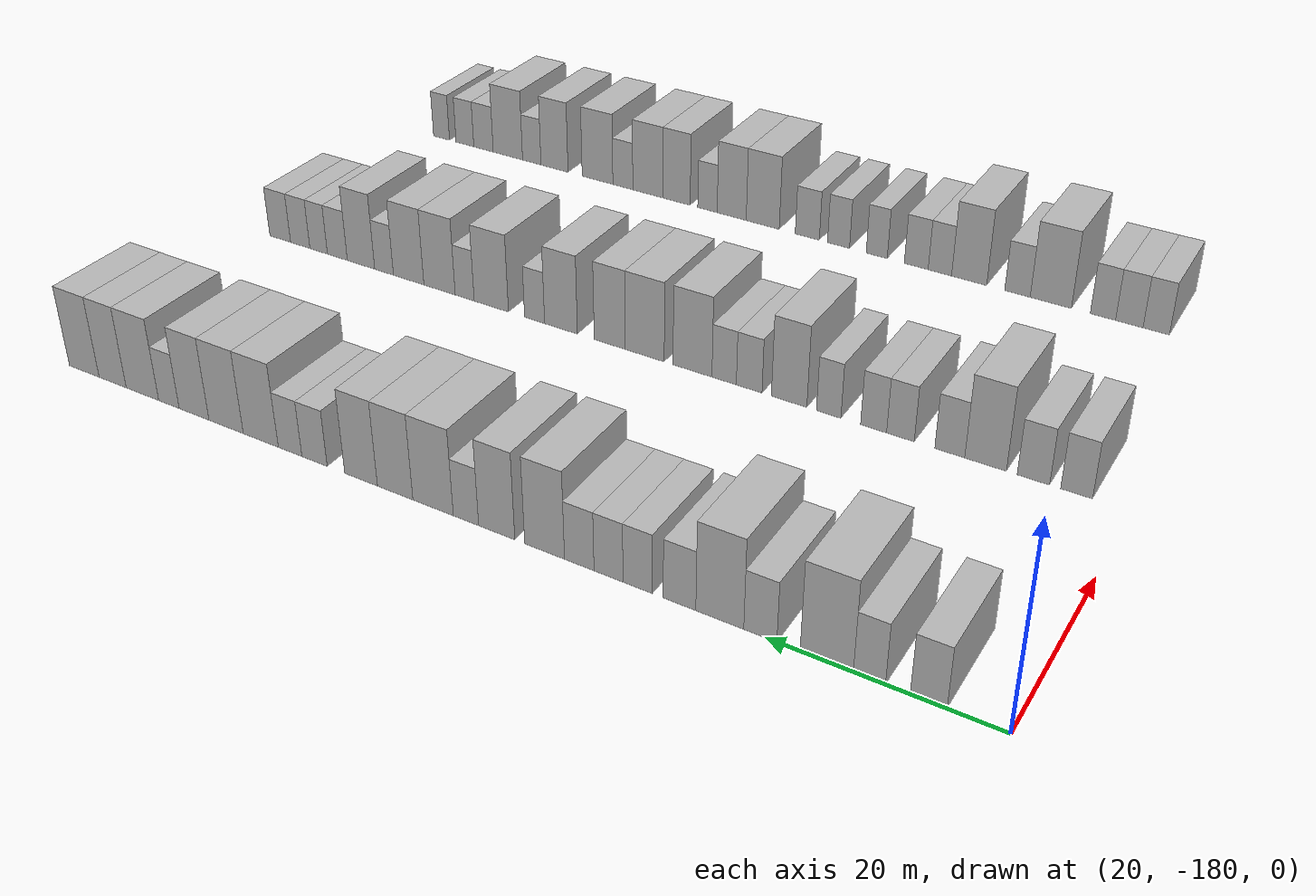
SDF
<sdf version="1.6">
 <world name="default">
  <model name="building_23">
   <static>1</static>
   <pose>25.0000 -173.5735 0 0.000000 0.000000 0.000000</pose>
   <link name="link">
    <pose>0 0 3.00 0 0 0</pose>
    <collision name="collision"><geometry><box><size>10.0000 2.9335 6.0000</size></box></geometry></collision>
    <visual name="visual">
     <cast_shadows>0</cast_shadows>
     <geometry><box><size>10.0000 2.9335 6.0000</size></box></geometry>
     <material>
      <script>
       <uri>model://HANNAS_wall/materials/scripts</uri>
       <uri>model://HANNAS_wall/materials/textures</uri>
       <name>vrc/HANNAS_wall</name>
      </script>
     </material>
    </visual>
   </link>
  </model>
  <model name="building_24">
   <static>1</static>
   <pose>25.0000 -168.7866 0 0.000000 0.000000 0.000000</pose>
   <link name="link">
    <pose>0 0 3.00 0 0 0</pose>
    <collision name="collision"><geometry><box><size>10.0000 2.6401 6.0000</size></box></geometry></collision>
    <visual name="visual">
     <cast_shadows>0</cast_shadows>
     <geometry><box><size>10.0000 2.6401 6.0000</size></box></geometry>
     <material>
      <script>
       <uri>model://HANNAS_wall/materials/scripts</uri>
       <uri>model://HANNAS_wall/materials/textures</uri>
       <name>vrc/HANNAS_wall</name>
      </script>
     </material>
    </visual>
   </link>
  </model>
  <model name="building_25">
   <static>1</static>
   <pose>25.0000 -165.2260 0 0.000000 0.000000 0.000000</pose>
   <link name="link">
    <pose>0 0 4.50 0 0 0</pose>
    <collision name="collision"><geometry><box><size>10.0000 4.4811 9.0000</size></box></geometry></collision>
    <visual name="visual">
     <cast_shadows>0</cast_shadows>
     <geometry><box><size>10.0000 4.4811 9.0000</size></box></geometry>
     <material>
      <script>
       <uri>model://HANNAS_wall/materials/scripts</uri>
       <uri>model://HANNAS_wall/materials/textures</uri>
       <name>vrc/HANNAS_wall</name>
      </script>
     </material>
    </visual>
   </link>
  </model>
  <model name="building_26">
   <static>1</static>
   <pose>25.0000 -159.5359 0 0.000000 0.000000 0.000000</pose>
   <link name="link">
    <pose>0 0 3.00 0 0 0</pose>
    <collision name="collision"><geometry><box><size>10.0000 2.8993 6.0000</size></box></geometry></collision>
    <visual name="visual">
     <cast_shadows>0</cast_shadows>
     <geometry><box><size>10.0000 2.8993 6.0000</size></box></geometry>
     <material>
      <script>
       <uri>model://HANNAS_wall/materials/scripts</uri>
       <uri>model://HANNAS_wall/materials/textures</uri>
       <name>vrc/HANNAS_wall</name>
      </script>
     </material>
    </visual>
   </link>
  </model>
  <model name="building_27">
   <static>1</static>
   <pose>25.0000 -155.9383 0 0.000000 0.000000 0.000000</pose>
   <link name="link">
    <pose>0 0 4.50 0 0 0</pose>
    <collision name="collision"><geometry><box><size>10.0000 4.2959 9.0000</size></box></geometry></collision>
    <visual name="visual">
     <cast_shadows>0</cast_shadows>
     <geometry><box><size>10.0000 4.2959 9.0000</size></box></geometry>
     <material>
      <script>
       <uri>model://HANNAS_wall/materials/scripts</uri>
       <uri>model://HANNAS_wall/materials/textures</uri>
       <name>vrc/HANNAS_wall</name>
      </script>
     </material>
    </visual>
   </link>
  </model>
  <model name="building_28">
   <static>1</static>
   <pose>25.0000 -152.2957 0 0.000000 0.000000 0.000000</pose>
   <link name="link">
    <pose>0 0 3.00 0 0 0</pose>
    <collision name="collision"><geometry><box><size>10.0000 2.9892 6.0000</size></box></geometry></collision>
    <visual name="visual">
     <cast_shadows>0</cast_shadows>
     <geometry><box><size>10.0000 2.9892 6.0000</size></box></geometry>
     <material>
      <script>
       <uri>model://HANNAS_wall/materials/scripts</uri>
       <uri>model://HANNAS_wall/materials/textures</uri>
       <name>vrc/HANNAS_wall</name>
      </script>
     </material>
    </visual>
   </link>
  </model>
  <model name="building_29">
   <static>1</static>
   <pose>25.0000 -148.4157 0 0.000000 0.000000 0.000000</pose>
   <link name="link">
    <pose>0 0 3.00 0 0 0</pose>
    <collision name="collision"><geometry><box><size>10.0000 2.7708 6.0000</size></box></geometry></collision>
    <visual name="visual">
     <cast_shadows>0</cast_shadows>
     <geometry><box><size>10.0000 2.7708 6.0000</size></box></geometry>
     <material>
      <script>
       <uri>model://HANNAS_wall/materials/scripts</uri>
       <uri>model://HANNAS_wall/materials/textures</uri>
       <name>vrc/HANNAS_wall</name>
      </script>
     </material>
    </visual>
   </link>
  </model>
  <model name="building_30">
   <static>1</static>
   <pose>25.0000 -145.6385 0 0.000000 0.000000 0.000000</pose>
   <link name="link">
    <pose>0 0 3.00 0 0 0</pose>
    <collision name="collision"><geometry><box><size>10.0000 2.7837 6.0000</size></box></geometry></collision>
    <visual name="visual">
     <cast_shadows>0</cast_shadows>
     <geometry><box><size>10.0000 2.7837 6.0000</size></box></geometry>
     <material>
      <script>
       <uri>model://HANNAS_wall/materials/scripts</uri>
       <uri>model://HANNAS_wall/materials/textures</uri>
       <name>vrc/HANNAS_wall</name>
      </script>
     </material>
    </visual>
   </link>
  </model>
  <model name="building_31">
   <static>1</static>
   <pose>25.0000 -142.8072 0 0.000000 0.000000 0.000000</pose>
   <link name="link">
    <pose>0 0 3.00 0 0 0</pose>
    <collision name="collision"><geometry><box><size>10.0000 2.8789 6.0000</size></box></geometry></collision>
    <visual name="visual">
     <cast_shadows>0</cast_shadows>
     <geometry><box><size>10.0000 2.8789 6.0000</size></box></geometry>
     <material>
      <script>
       <uri>model://HANNAS_wall/materials/scripts</uri>
       <uri>model://HANNAS_wall/materials/textures</uri>
       <name>vrc/HANNAS_wall</name>
      </script>
     </material>
    </visual>
   </link>
  </model>
  <model name="building_32">
   <static>1</static>
   <pose>25.0000 -139.3813 0 0.000000 0.000000 0.000000</pose>
   <link name="link">
    <pose>0 0 4.50 0 0 0</pose>
    <collision name="collision"><geometry><box><size>10.0000 3.9728 9.0000</size></box></geometry></collision>
    <visual name="visual">
     <cast_shadows>0</cast_shadows>
     <geometry><box><size>10.0000 3.9728 9.0000</size></box></geometry>
     <material>
      <script>
       <uri>model://HANNAS_wall/materials/scripts</uri>
       <uri>model://HANNAS_wall/materials/textures</uri>
       <name>vrc/HANNAS_wall</name>
      </script>
     </material>
    </visual>
   </link>
  </model>
  <model name="building_33">
   <static>1</static>
   <pose>25.0000 -134.5381 0 0.000000 0.000000 0.000000</pose>
   <link name="link">
    <pose>0 0 4.50 0 0 0</pose>
    <collision name="collision"><geometry><box><size>10.0000 3.7136 9.0000</size></box></geometry></collision>
    <visual name="visual">
     <cast_shadows>0</cast_shadows>
     <geometry><box><size>10.0000 3.7136 9.0000</size></box></geometry>
     <material>
      <script>
       <uri>model://HANNAS_wall/materials/scripts</uri>
       <uri>model://HANNAS_wall/materials/textures</uri>
       <name>vrc/HANNAS_wall</name>
      </script>
     </material>
    </visual>
   </link>
  </model>
  <model name="building_34">
   <static>1</static>
   <pose>25.0000 -131.3532 0 0.000000 0.000000 0.000000</pose>
   <link name="link">
    <pose>0 0 3.00 0 0 0</pose>
    <collision name="collision"><geometry><box><size>10.0000 2.6562 6.0000</size></box></geometry></collision>
    <visual name="visual">
     <cast_shadows>0</cast_shadows>
     <geometry><box><size>10.0000 2.6562 6.0000</size></box></geometry>
     <material>
      <script>
       <uri>model://HANNAS_wall/materials/scripts</uri>
       <uri>model://HANNAS_wall/materials/textures</uri>
       <name>vrc/HANNAS_wall</name>
      </script>
     </material>
    </visual>
   </link>
  </model>
  <model name="building_35">
   <static>1</static>
   <pose>25.0000 -127.8609 0 0.000000 0.000000 0.000000</pose>
   <link name="link">
    <pose>0 0 4.50 0 0 0</pose>
    <collision name="collision"><geometry><box><size>10.0000 4.3284 9.0000</size></box></geometry></collision>
    <visual name="visual">
     <cast_shadows>0</cast_shadows>
     <geometry><box><size>10.0000 4.3284 9.0000</size></box></geometry>
     <material>
      <script>
       <uri>model://HANNAS_wall/materials/scripts</uri>
       <uri>model://HANNAS_wall/materials/textures</uri>
       <name>vrc/HANNAS_wall</name>
      </script>
     </material>
    </visual>
   </link>
  </model>
  <model name="building_36">
   <static>1</static>
   <pose>25.0000 -123.7512 0 0.000000 0.000000 0.000000</pose>
   <link name="link">
    <pose>0 0 4.50 0 0 0</pose>
    <collision name="collision"><geometry><box><size>10.0000 3.8909 9.0000</size></box></geometry></collision>
    <visual name="visual">
     <cast_shadows>0</cast_shadows>
     <geometry><box><size>10.0000 3.8909 9.0000</size></box></geometry>
     <material>
      <script>
       <uri>model://HANNAS_wall/materials/scripts</uri>
       <uri>model://HANNAS_wall/materials/textures</uri>
       <name>vrc/HANNAS_wall</name>
      </script>
     </material>
    </visual>
   </link>
  </model>
  <model name="building_37">
   <static>1</static>
   <pose>25.0000 -119.9716 0 0.000000 0.000000 0.000000</pose>
   <link name="link">
    <pose>0 0 4.50 0 0 0</pose>
    <collision name="collision"><geometry><box><size>10.0000 3.6684 9.0000</size></box></geometry></collision>
    <visual name="visual">
     <cast_shadows>0</cast_shadows>
     <geometry><box><size>10.0000 3.6684 9.0000</size></box></geometry>
     <material>
      <script>
       <uri>model://HANNAS_wall/materials/scripts</uri>
       <uri>model://HANNAS_wall/materials/textures</uri>
       <name>vrc/HANNAS_wall</name>
      </script>
     </material>
    </visual>
   </link>
  </model>
  <model name="building_38">
   <static>1</static>
   <pose>25.0000 -114.6735 0 0.000000 0.000000 0.000000</pose>
   <link name="link">
    <pose>0 0 3.00 0 0 0</pose>
    <collision name="collision"><geometry><box><size>10.0000 2.9277 6.0000</size></box></geometry></collision>
    <visual name="visual">
     <cast_shadows>0</cast_shadows>
     <geometry><box><size>10.0000 2.9277 6.0000</size></box></geometry>
     <material>
      <script>
       <uri>model://HANNAS_wall/materials/scripts</uri>
       <uri>model://HANNAS_wall/materials/textures</uri>
       <name>vrc/HANNAS_wall</name>
      </script>
     </material>
    </visual>
   </link>
  </model>
  <model name="building_39">
   <static>1</static>
   <pose>25.0000 -111.8203 0 0.000000 0.000000 0.000000</pose>
   <link name="link">
    <pose>0 0 3.00 0 0 0</pose>
    <collision name="collision"><geometry><box><size>10.0000 2.7787 6.0000</size></box></geometry></collision>
    <visual name="visual">
     <cast_shadows>0</cast_shadows>
     <geometry><box><size>10.0000 2.7787 6.0000</size></box></geometry>
     <material>
      <script>
       <uri>model://HANNAS_wall/materials/scripts</uri>
       <uri>model://HANNAS_wall/materials/textures</uri>
       <name>vrc/HANNAS_wall</name>
      </script>
     </material>
    </visual>
   </link>
  </model>
  <model name="building_40">
   <static>1</static>
   <pose>25.0000 -108.3246 0 0.000000 0.000000 0.000000</pose>
   <link name="link">
    <pose>0 0 4.50 0 0 0</pose>
    <collision name="collision"><geometry><box><size>10.0000 4.2128 9.0000</size></box></geometry></collision>
    <visual name="visual">
     <cast_shadows>0</cast_shadows>
     <geometry><box><size>10.0000 4.2128 9.0000</size></box></geometry>
     <material>
      <script>
       <uri>model://HANNAS_wall/materials/scripts</uri>
       <uri>model://HANNAS_wall/materials/textures</uri>
       <name>vrc/HANNAS_wall</name>
      </script>
     </material>
    </visual>
   </link>
  </model>
  <model name="building_41">
   <static>1</static>
   <pose>25.0000 -104.1066 0 0.000000 0.000000 0.000000</pose>
   <link name="link">
    <pose>0 0 4.50 0 0 0</pose>
    <collision name="collision"><geometry><box><size>10.0000 4.2232 9.0000</size></box></geometry></collision>
    <visual name="visual">
     <cast_shadows>0</cast_shadows>
     <geometry><box><size>10.0000 4.2232 9.0000</size></box></geometry>
     <material>
      <script>
       <uri>model://HANNAS_wall/materials/scripts</uri>
       <uri>model://HANNAS_wall/materials/textures</uri>
       <name>vrc/HANNAS_wall</name>
      </script>
     </material>
    </visual>
   </link>
  </model>
  <model name="building_42">
   <static>1</static>
   <pose>25.0000 -100.1209 0 0.000000 0.000000 0.000000</pose>
   <link name="link">
    <pose>0 0 4.50 0 0 0</pose>
    <collision name="collision"><geometry><box><size>10.0000 3.7483 9.0000</size></box></geometry></collision>
    <visual name="visual">
     <cast_shadows>0</cast_shadows>
     <geometry><box><size>10.0000 3.7483 9.0000</size></box></geometry>
     <material>
      <script>
       <uri>model://HANNAS_wall/materials/scripts</uri>
       <uri>model://HANNAS_wall/materials/textures</uri>
       <name>vrc/HANNAS_wall</name>
      </script>
     </material>
    </visual>
   </link>
  </model>
  <model name="building_43">
   <static>1</static>
   <pose>25.0000 -96.9372 0 0.000000 0.000000 0.000000</pose>
   <link name="link">
    <pose>0 0 3.00 0 0 0</pose>
    <collision name="collision"><geometry><box><size>10.0000 2.6193 6.0000</size></box></geometry></collision>
    <visual name="visual">
     <cast_shadows>0</cast_shadows>
     <geometry><box><size>10.0000 2.6193 6.0000</size></box></geometry>
     <material>
      <script>
       <uri>model://HANNAS_wall/materials/scripts</uri>
       <uri>model://HANNAS_wall/materials/textures</uri>
       <name>vrc/HANNAS_wall</name>
      </script>
     </material>
    </visual>
   </link>
  </model>
  <model name="building_44">
   <static>1</static>
   <pose>25.0000 -93.5105 0 0.000000 0.000000 0.000000</pose>
   <link name="link">
    <pose>0 0 4.50 0 0 0</pose>
    <collision name="collision"><geometry><box><size>10.0000 4.2341 9.0000</size></box></geometry></collision>
    <visual name="visual">
     <cast_shadows>0</cast_shadows>
     <geometry><box><size>10.0000 4.2341 9.0000</size></box></geometry>
     <material>
      <script>
       <uri>model://HANNAS_wall/materials/scripts</uri>
       <uri>model://HANNAS_wall/materials/textures</uri>
       <name>vrc/HANNAS_wall</name>
      </script>
     </material>
    </visual>
   </link>
  </model>
  <model name="building_45">
   <static>1</static>
   <pose>25.0000 -89.5842 0 0.000000 0.000000 0.000000</pose>
   <link name="link">
    <pose>0 0 4.50 0 0 0</pose>
    <collision name="collision"><geometry><box><size>10.0000 3.6184 9.0000</size></box></geometry></collision>
    <visual name="visual">
     <cast_shadows>0</cast_shadows>
     <geometry><box><size>10.0000 3.6184 9.0000</size></box></geometry>
     <material>
      <script>
       <uri>model://HANNAS_wall/materials/scripts</uri>
       <uri>model://HANNAS_wall/materials/textures</uri>
       <name>vrc/HANNAS_wall</name>
      </script>
     </material>
    </visual>
   </link>
  </model>
  <model name="building_46">
   <static>1</static>
   <pose>25.0000 -85.7618 0 0.000000 0.000000 0.000000</pose>
   <link name="link">
    <pose>0 0 4.50 0 0 0</pose>
    <collision name="collision"><geometry><box><size>10.0000 4.0264 9.0000</size></box></geometry></collision>
    <visual name="visual">
     <cast_shadows>0</cast_shadows>
     <geometry><box><size>10.0000 4.0264 9.0000</size></box></geometry>
     <material>
      <script>
       <uri>model://HANNAS_wall/materials/scripts</uri>
       <uri>model://HANNAS_wall/materials/textures</uri>
       <name>vrc/HANNAS_wall</name>
      </script>
     </material>
    </visual>
   </link>
  </model>
  <model name="building_166">
   <static>1</static>
   <pose>55.0000 -175.0810 0 0.000000 0.000000 0.000000</pose>
   <link name="link">
    <pose>0 0 3.00 0 0 0</pose>
    <collision name="collision"><geometry><box><size>10.0000 2.8679 6.0000</size></box></geometry></collision>
    <visual name="visual">
     <cast_shadows>0</cast_shadows>
     <geometry><box><size>10.0000 2.8679 6.0000</size></box></geometry>
     <material>
      <script>
       <uri>model://HANNAS_wall/materials/scripts</uri>
       <uri>model://HANNAS_wall/materials/textures</uri>
       <name>vrc/HANNAS_wall</name>
      </script>
     </material>
    </visual>
   </link>
  </model>
  <model name="building_167">
   <static>1</static>
   <pose>55.0000 -171.1595 0 0.000000 0.000000 0.000000</pose>
   <link name="link">
    <pose>0 0 3.00 0 0 0</pose>
    <collision name="collision"><geometry><box><size>10.0000 2.9753 6.0000</size></box></geometry></collision>
    <visual name="visual">
     <cast_shadows>0</cast_shadows>
     <geometry><box><size>10.0000 2.9753 6.0000</size></box></geometry>
     <material>
      <script>
       <uri>model://HANNAS_wall/materials/scripts</uri>
       <uri>model://HANNAS_wall/materials/textures</uri>
       <name>vrc/HANNAS_wall</name>
      </script>
     </material>
    </visual>
   </link>
  </model>
  <model name="building_168">
   <static>1</static>
   <pose>55.0000 -166.7075 0 0.000000 0.000000 0.000000</pose>
   <link name="link">
    <pose>0 0 4.50 0 0 0</pose>
    <collision name="collision"><geometry><box><size>10.0000 3.9287 9.0000</size></box></geometry></collision>
    <visual name="visual">
     <cast_shadows>0</cast_shadows>
     <geometry><box><size>10.0000 3.9287 9.0000</size></box></geometry>
     <material>
      <script>
       <uri>model://HANNAS_wall/materials/scripts</uri>
       <uri>model://HANNAS_wall/materials/textures</uri>
       <name>vrc/HANNAS_wall</name>
      </script>
     </material>
    </visual>
   </link>
  </model>
  <model name="building_169">
   <static>1</static>
   <pose>55.0000 -163.3071 0 0.000000 0.000000 0.000000</pose>
   <link name="link">
    <pose>0 0 3.00 0 0 0</pose>
    <collision name="collision"><geometry><box><size>10.0000 2.8720 6.0000</size></box></geometry></collision>
    <visual name="visual">
     <cast_shadows>0</cast_shadows>
     <geometry><box><size>10.0000 2.8720 6.0000</size></box></geometry>
     <material>
      <script>
       <uri>model://HANNAS_wall/materials/scripts</uri>
       <uri>model://HANNAS_wall/materials/textures</uri>
       <name>vrc/HANNAS_wall</name>
      </script>
     </material>
    </visual>
   </link>
  </model>
  <model name="building_170">
   <static>1</static>
   <pose>55.0000 -158.5044 0 0.000000 0.000000 0.000000</pose>
   <link name="link">
    <pose>0 0 3.00 0 0 0</pose>
    <collision name="collision"><geometry><box><size>10.0000 2.7335 6.0000</size></box></geometry></collision>
    <visual name="visual">
     <cast_shadows>0</cast_shadows>
     <geometry><box><size>10.0000 2.7335 6.0000</size></box></geometry>
     <material>
      <script>
       <uri>model://HANNAS_wall/materials/scripts</uri>
       <uri>model://HANNAS_wall/materials/textures</uri>
       <name>vrc/HANNAS_wall</name>
      </script>
     </material>
    </visual>
   </link>
  </model>
  <model name="building_171">
   <static>1</static>
   <pose>55.0000 -155.8340 0 0.000000 0.000000 0.000000</pose>
   <link name="link">
    <pose>0 0 3.00 0 0 0</pose>
    <collision name="collision"><geometry><box><size>10.0000 2.6073 6.0000</size></box></geometry></collision>
    <visual name="visual">
     <cast_shadows>0</cast_shadows>
     <geometry><box><size>10.0000 2.6073 6.0000</size></box></geometry>
     <material>
      <script>
       <uri>model://HANNAS_wall/materials/scripts</uri>
       <uri>model://HANNAS_wall/materials/textures</uri>
       <name>vrc/HANNAS_wall</name>
      </script>
     </material>
    </visual>
   </link>
  </model>
  <model name="building_172">
   <static>1</static>
   <pose>55.0000 -151.2718 0 0.000000 0.000000 0.000000</pose>
   <link name="link">
    <pose>0 0 3.00 0 0 0</pose>
    <collision name="collision"><geometry><box><size>10.0000 2.5171 6.0000</size></box></geometry></collision>
    <visual name="visual">
     <cast_shadows>0</cast_shadows>
     <geometry><box><size>10.0000 2.5171 6.0000</size></box></geometry>
     <material>
      <script>
       <uri>model://HANNAS_wall/materials/scripts</uri>
       <uri>model://HANNAS_wall/materials/textures</uri>
       <name>vrc/HANNAS_wall</name>
      </script>
     </material>
    </visual>
   </link>
  </model>
  <model name="building_173">
   <static>1</static>
   <pose>55.0000 -147.1477 0 0.000000 0.000000 0.000000</pose>
   <link name="link">
    <pose>0 0 4.50 0 0 0</pose>
    <collision name="collision"><geometry><box><size>10.0000 3.7311 9.0000</size></box></geometry></collision>
    <visual name="visual">
     <cast_shadows>0</cast_shadows>
     <geometry><box><size>10.0000 3.7311 9.0000</size></box></geometry>
     <material>
      <script>
       <uri>model://HANNAS_wall/materials/scripts</uri>
       <uri>model://HANNAS_wall/materials/textures</uri>
       <name>vrc/HANNAS_wall</name>
      </script>
     </material>
    </visual>
   </link>
  </model>
  <model name="building_174">
   <static>1</static>
   <pose>55.0000 -142.8978 0 0.000000 0.000000 0.000000</pose>
   <link name="link">
    <pose>0 0 3.00 0 0 0</pose>
    <collision name="collision"><geometry><box><size>10.0000 2.7685 6.0000</size></box></geometry></collision>
    <visual name="visual">
     <cast_shadows>0</cast_shadows>
     <geometry><box><size>10.0000 2.7685 6.0000</size></box></geometry>
     <material>
      <script>
       <uri>model://HANNAS_wall/materials/scripts</uri>
       <uri>model://HANNAS_wall/materials/textures</uri>
       <name>vrc/HANNAS_wall</name>
      </script>
     </material>
    </visual>
   </link>
  </model>
  <model name="building_175">
   <static>1</static>
   <pose>55.0000 -140.1805 0 0.000000 0.000000 0.000000</pose>
   <link name="link">
    <pose>0 0 3.00 0 0 0</pose>
    <collision name="collision"><geometry><box><size>10.0000 2.6662 6.0000</size></box></geometry></collision>
    <visual name="visual">
     <cast_shadows>0</cast_shadows>
     <geometry><box><size>10.0000 2.6662 6.0000</size></box></geometry>
     <material>
      <script>
       <uri>model://HANNAS_wall/materials/scripts</uri>
       <uri>model://HANNAS_wall/materials/textures</uri>
       <name>vrc/HANNAS_wall</name>
      </script>
     </material>
    </visual>
   </link>
  </model>
  <model name="building_176">
   <static>1</static>
   <pose>55.0000 -136.6841 0 0.000000 0.000000 0.000000</pose>
   <link name="link">
    <pose>0 0 4.50 0 0 0</pose>
    <collision name="collision"><geometry><box><size>10.0000 4.3267 9.0000</size></box></geometry></collision>
    <visual name="visual">
     <cast_shadows>0</cast_shadows>
     <geometry><box><size>10.0000 4.3267 9.0000</size></box></geometry>
     <material>
      <script>
       <uri>model://HANNAS_wall/materials/scripts</uri>
       <uri>model://HANNAS_wall/materials/textures</uri>
       <name>vrc/HANNAS_wall</name>
      </script>
     </material>
    </visual>
   </link>
  </model>
  <model name="building_177">
   <static>1</static>
   <pose>55.0000 -131.2930 0 0.000000 0.000000 0.000000</pose>
   <link name="link">
    <pose>0 0 4.50 0 0 0</pose>
    <collision name="collision"><geometry><box><size>10.0000 4.4554 9.0000</size></box></geometry></collision>
    <visual name="visual">
     <cast_shadows>0</cast_shadows>
     <geometry><box><size>10.0000 4.4554 9.0000</size></box></geometry>
     <material>
      <script>
       <uri>model://HANNAS_wall/materials/scripts</uri>
       <uri>model://HANNAS_wall/materials/textures</uri>
       <name>vrc/HANNAS_wall</name>
      </script>
     </material>
    </visual>
   </link>
  </model>
  <model name="building_178">
   <static>1</static>
   <pose>55.0000 -127.2445 0 0.000000 0.000000 0.000000</pose>
   <link name="link">
    <pose>0 0 4.50 0 0 0</pose>
    <collision name="collision"><geometry><box><size>10.0000 3.6415 9.0000</size></box></geometry></collision>
    <visual name="visual">
     <cast_shadows>0</cast_shadows>
     <geometry><box><size>10.0000 3.6415 9.0000</size></box></geometry>
     <material>
      <script>
       <uri>model://HANNAS_wall/materials/scripts</uri>
       <uri>model://HANNAS_wall/materials/textures</uri>
       <name>vrc/HANNAS_wall</name>
      </script>
     </material>
    </visual>
   </link>
  </model>
  <model name="building_179">
   <static>1</static>
   <pose>55.0000 -121.4429 0 0.000000 0.000000 0.000000</pose>
   <link name="link">
    <pose>0 0 4.50 0 0 0</pose>
    <collision name="collision"><geometry><box><size>10.0000 3.9616 9.0000</size></box></geometry></collision>
    <visual name="visual">
     <cast_shadows>0</cast_shadows>
     <geometry><box><size>10.0000 3.9616 9.0000</size></box></geometry>
     <material>
      <script>
       <uri>model://HANNAS_wall/materials/scripts</uri>
       <uri>model://HANNAS_wall/materials/textures</uri>
       <name>vrc/HANNAS_wall</name>
      </script>
     </material>
    </visual>
   </link>
  </model>
  <model name="building_180">
   <static>1</static>
   <pose>55.0000 -118.2333 0 0.000000 0.000000 0.000000</pose>
   <link name="link">
    <pose>0 0 3.00 0 0 0</pose>
    <collision name="collision"><geometry><box><size>10.0000 2.4577 6.0000</size></box></geometry></collision>
    <visual name="visual">
     <cast_shadows>0</cast_shadows>
     <geometry><box><size>10.0000 2.4577 6.0000</size></box></geometry>
     <material>
      <script>
       <uri>model://HANNAS_wall/materials/scripts</uri>
       <uri>model://HANNAS_wall/materials/textures</uri>
       <name>vrc/HANNAS_wall</name>
      </script>
     </material>
    </visual>
   </link>
  </model>
  <model name="building_181">
   <static>1</static>
   <pose>55.0000 -112.8418 0 0.000000 0.000000 0.000000</pose>
   <link name="link">
    <pose>0 0 4.50 0 0 0</pose>
    <collision name="collision"><geometry><box><size>10.0000 4.3252 9.0000</size></box></geometry></collision>
    <visual name="visual">
     <cast_shadows>0</cast_shadows>
     <geometry><box><size>10.0000 4.3252 9.0000</size></box></geometry>
     <material>
      <script>
       <uri>model://HANNAS_wall/materials/scripts</uri>
       <uri>model://HANNAS_wall/materials/textures</uri>
       <name>vrc/HANNAS_wall</name>
      </script>
     </material>
    </visual>
   </link>
  </model>
  <model name="building_182">
   <static>1</static>
   <pose>55.0000 -109.4632 0 0.000000 0.000000 0.000000</pose>
   <link name="link">
    <pose>0 0 3.00 0 0 0</pose>
    <collision name="collision"><geometry><box><size>10.0000 2.4322 6.0000</size></box></geometry></collision>
    <visual name="visual">
     <cast_shadows>0</cast_shadows>
     <geometry><box><size>10.0000 2.4322 6.0000</size></box></geometry>
     <material>
      <script>
       <uri>model://HANNAS_wall/materials/scripts</uri>
       <uri>model://HANNAS_wall/materials/textures</uri>
       <name>vrc/HANNAS_wall</name>
      </script>
     </material>
    </visual>
   </link>
  </model>
  <model name="building_183">
   <static>1</static>
   <pose>55.0000 -106.2067 0 0.000000 0.000000 0.000000</pose>
   <link name="link">
    <pose>0 0 4.50 0 0 0</pose>
    <collision name="collision"><geometry><box><size>10.0000 4.0807 9.0000</size></box></geometry></collision>
    <visual name="visual">
     <cast_shadows>0</cast_shadows>
     <geometry><box><size>10.0000 4.0807 9.0000</size></box></geometry>
     <material>
      <script>
       <uri>model://HANNAS_wall/materials/scripts</uri>
       <uri>model://HANNAS_wall/materials/textures</uri>
       <name>vrc/HANNAS_wall</name>
      </script>
     </material>
    </visual>
   </link>
  </model>
  <model name="building_184">
   <static>1</static>
   <pose>55.0000 -102.1364 0 0.000000 0.000000 0.000000</pose>
   <link name="link">
    <pose>0 0 4.50 0 0 0</pose>
    <collision name="collision"><geometry><box><size>10.0000 4.0601 9.0000</size></box></geometry></collision>
    <visual name="visual">
     <cast_shadows>0</cast_shadows>
     <geometry><box><size>10.0000 4.0601 9.0000</size></box></geometry>
     <material>
      <script>
       <uri>model://HANNAS_wall/materials/scripts</uri>
       <uri>model://HANNAS_wall/materials/textures</uri>
       <name>vrc/HANNAS_wall</name>
      </script>
     </material>
    </visual>
   </link>
  </model>
  <model name="building_185">
   <static>1</static>
   <pose>55.0000 -98.8446 0 0.000000 0.000000 0.000000</pose>
   <link name="link">
    <pose>0 0 3.00 0 0 0</pose>
    <collision name="collision"><geometry><box><size>10.0000 2.5235 6.0000</size></box></geometry></collision>
    <visual name="visual">
     <cast_shadows>0</cast_shadows>
     <geometry><box><size>10.0000 2.5235 6.0000</size></box></geometry>
     <material>
      <script>
       <uri>model://HANNAS_wall/materials/scripts</uri>
       <uri>model://HANNAS_wall/materials/textures</uri>
       <name>vrc/HANNAS_wall</name>
      </script>
     </material>
    </visual>
   </link>
  </model>
  <model name="building_186">
   <static>1</static>
   <pose>55.0000 -95.7008 0 0.000000 0.000000 0.000000</pose>
   <link name="link">
    <pose>0 0 4.50 0 0 0</pose>
    <collision name="collision"><geometry><box><size>10.0000 3.7642 9.0000</size></box></geometry></collision>
    <visual name="visual">
     <cast_shadows>0</cast_shadows>
     <geometry><box><size>10.0000 3.7642 9.0000</size></box></geometry>
     <material>
      <script>
       <uri>model://HANNAS_wall/materials/scripts</uri>
       <uri>model://HANNAS_wall/materials/textures</uri>
       <name>vrc/HANNAS_wall</name>
      </script>
     </material>
    </visual>
   </link>
  </model>
  <model name="building_187">
   <static>1</static>
   <pose>55.0000 -92.4305 0 0.000000 0.000000 0.000000</pose>
   <link name="link">
    <pose>0 0 3.00 0 0 0</pose>
    <collision name="collision"><geometry><box><size>10.0000 2.7763 6.0000</size></box></geometry></collision>
    <visual name="visual">
     <cast_shadows>0</cast_shadows>
     <geometry><box><size>10.0000 2.7763 6.0000</size></box></geometry>
     <material>
      <script>
       <uri>model://HANNAS_wall/materials/scripts</uri>
       <uri>model://HANNAS_wall/materials/textures</uri>
       <name>vrc/HANNAS_wall</name>
      </script>
     </material>
    </visual>
   </link>
  </model>
  <model name="building_188">
   <static>1</static>
   <pose>55.0000 -89.8046 0 0.000000 0.000000 0.000000</pose>
   <link name="link">
    <pose>0 0 3.00 0 0 0</pose>
    <collision name="collision"><geometry><box><size>10.0000 2.4756 6.0000</size></box></geometry></collision>
    <visual name="visual">
     <cast_shadows>0</cast_shadows>
     <geometry><box><size>10.0000 2.4756 6.0000</size></box></geometry>
     <material>
      <script>
       <uri>model://HANNAS_wall/materials/scripts</uri>
       <uri>model://HANNAS_wall/materials/textures</uri>
       <name>vrc/HANNAS_wall</name>
      </script>
     </material>
    </visual>
   </link>
  </model>
  <model name="building_189">
   <static>1</static>
   <pose>55.0000 -87.1867 0 0.000000 0.000000 0.000000</pose>
   <link name="link">
    <pose>0 0 3.00 0 0 0</pose>
    <collision name="collision"><geometry><box><size>10.0000 2.7602 6.0000</size></box></geometry></collision>
    <visual name="visual">
     <cast_shadows>0</cast_shadows>
     <geometry><box><size>10.0000 2.7602 6.0000</size></box></geometry>
     <material>
      <script>
       <uri>model://HANNAS_wall/materials/scripts</uri>
       <uri>model://HANNAS_wall/materials/textures</uri>
       <name>vrc/HANNAS_wall</name>
      </script>
     </material>
    </visual>
   </link>
  </model>
  <model name="building_190">
   <static>1</static>
   <pose>55.0000 -84.3106 0 0.000000 0.000000 0.000000</pose>
   <link name="link">
    <pose>0 0 3.00 0 0 0</pose>
    <collision name="collision"><geometry><box><size>10.0000 2.9920 6.0000</size></box></geometry></collision>
    <visual name="visual">
     <cast_shadows>0</cast_shadows>
     <geometry><box><size>10.0000 2.9920 6.0000</size></box></geometry>
     <material>
      <script>
       <uri>model://HANNAS_wall/materials/scripts</uri>
       <uri>model://HANNAS_wall/materials/textures</uri>
       <name>vrc/HANNAS_wall</name>
      </script>
     </material>
    </visual>
   </link>
  </model>
  <model name="building_313">
   <static>1</static>
   <pose>85.0000 -173.5498 0 0.000000 0.000000 0.000000</pose>
   <link name="link">
    <pose>0 0 3.00 0 0 0</pose>
    <collision name="collision"><geometry><box><size>10.0000 2.6871 6.0000</size></box></geometry></collision>
    <visual name="visual">
     <cast_shadows>0</cast_shadows>
     <geometry><box><size>10.0000 2.6871 6.0000</size></box></geometry>
     <material>
      <script>
       <uri>model://HANNAS_wall/materials/scripts</uri>
       <uri>model://HANNAS_wall/materials/textures</uri>
       <name>vrc/HANNAS_wall</name>
      </script>
     </material>
    </visual>
   </link>
  </model>
  <model name="building_314">
   <static>1</static>
   <pose>85.0000 -170.7911 0 0.000000 0.000000 0.000000</pose>
   <link name="link">
    <pose>0 0 3.00 0 0 0</pose>
    <collision name="collision"><geometry><box><size>10.0000 2.8304 6.0000</size></box></geometry></collision>
    <visual name="visual">
     <cast_shadows>0</cast_shadows>
     <geometry><box><size>10.0000 2.8304 6.0000</size></box></geometry>
     <material>
      <script>
       <uri>model://HANNAS_wall/materials/scripts</uri>
       <uri>model://HANNAS_wall/materials/textures</uri>
       <name>vrc/HANNAS_wall</name>
      </script>
     </material>
    </visual>
   </link>
  </model>
  <model name="building_315">
   <static>1</static>
   <pose>85.0000 -168.0566 0 0.000000 0.000000 0.000000</pose>
   <link name="link">
    <pose>0 0 3.00 0 0 0</pose>
    <collision name="collision"><geometry><box><size>10.0000 2.6387 6.0000</size></box></geometry></collision>
    <visual name="visual">
     <cast_shadows>0</cast_shadows>
     <geometry><box><size>10.0000 2.6387 6.0000</size></box></geometry>
     <material>
      <script>
       <uri>model://HANNAS_wall/materials/scripts</uri>
       <uri>model://HANNAS_wall/materials/textures</uri>
       <name>vrc/HANNAS_wall</name>
      </script>
     </material>
    </visual>
   </link>
  </model>
  <model name="building_316">
   <static>1</static>
   <pose>85.0000 -162.5198 0 0.000000 0.000000 0.000000</pose>
   <link name="link">
    <pose>0 0 4.50 0 0 0</pose>
    <collision name="collision"><geometry><box><size>10.0000 4.4349 9.0000</size></box></geometry></collision>
    <visual name="visual">
     <cast_shadows>0</cast_shadows>
     <geometry><box><size>10.0000 4.4349 9.0000</size></box></geometry>
     <material>
      <script>
       <uri>model://HANNAS_wall/materials/scripts</uri>
       <uri>model://HANNAS_wall/materials/textures</uri>
       <name>vrc/HANNAS_wall</name>
      </script>
     </material>
    </visual>
   </link>
  </model>
  <model name="building_317">
   <static>1</static>
   <pose>85.0000 -158.9131 0 0.000000 0.000000 0.000000</pose>
   <link name="link">
    <pose>0 0 3.00 0 0 0</pose>
    <collision name="collision"><geometry><box><size>10.0000 2.7783 6.0000</size></box></geometry></collision>
    <visual name="visual">
     <cast_shadows>0</cast_shadows>
     <geometry><box><size>10.0000 2.7783 6.0000</size></box></geometry>
     <material>
      <script>
       <uri>model://HANNAS_wall/materials/scripts</uri>
       <uri>model://HANNAS_wall/materials/textures</uri>
       <name>vrc/HANNAS_wall</name>
      </script>
     </material>
    </visual>
   </link>
  </model>
  <model name="building_318">
   <static>1</static>
   <pose>85.0000 -153.5490 0 0.000000 0.000000 0.000000</pose>
   <link name="link">
    <pose>0 0 4.50 0 0 0</pose>
    <collision name="collision"><geometry><box><size>10.0000 3.9500 9.0000</size></box></geometry></collision>
    <visual name="visual">
     <cast_shadows>0</cast_shadows>
     <geometry><box><size>10.0000 3.9500 9.0000</size></box></geometry>
     <material>
      <script>
       <uri>model://HANNAS_wall/materials/scripts</uri>
       <uri>model://HANNAS_wall/materials/textures</uri>
       <name>vrc/HANNAS_wall</name>
      </script>
     </material>
    </visual>
   </link>
  </model>
  <model name="building_319">
   <static>1</static>
   <pose>85.0000 -150.2380 0 0.000000 0.000000 0.000000</pose>
   <link name="link">
    <pose>0 0 3.00 0 0 0</pose>
    <collision name="collision"><geometry><box><size>10.0000 2.6719 6.0000</size></box></geometry></collision>
    <visual name="visual">
     <cast_shadows>0</cast_shadows>
     <geometry><box><size>10.0000 2.6719 6.0000</size></box></geometry>
     <material>
      <script>
       <uri>model://HANNAS_wall/materials/scripts</uri>
       <uri>model://HANNAS_wall/materials/textures</uri>
       <name>vrc/HANNAS_wall</name>
      </script>
     </material>
    </visual>
   </link>
  </model>
  <model name="building_320">
   <static>1</static>
   <pose>85.0000 -147.5228 0 0.000000 0.000000 0.000000</pose>
   <link name="link">
    <pose>0 0 3.00 0 0 0</pose>
    <collision name="collision"><geometry><box><size>10.0000 2.7585 6.0000</size></box></geometry></collision>
    <visual name="visual">
     <cast_shadows>0</cast_shadows>
     <geometry><box><size>10.0000 2.7585 6.0000</size></box></geometry>
     <material>
      <script>
       <uri>model://HANNAS_wall/materials/scripts</uri>
       <uri>model://HANNAS_wall/materials/textures</uri>
       <name>vrc/HANNAS_wall</name>
      </script>
     </material>
    </visual>
   </link>
  </model>
  <model name="building_321">
   <static>1</static>
   <pose>85.0000 -142.9003 0 0.000000 0.000000 0.000000</pose>
   <link name="link">
    <pose>0 0 3.00 0 0 0</pose>
    <collision name="collision"><geometry><box><size>10.0000 2.4864 6.0000</size></box></geometry></collision>
    <visual name="visual">
     <cast_shadows>0</cast_shadows>
     <geometry><box><size>10.0000 2.4864 6.0000</size></box></geometry>
     <material>
      <script>
       <uri>model://HANNAS_wall/materials/scripts</uri>
       <uri>model://HANNAS_wall/materials/textures</uri>
       <name>vrc/HANNAS_wall</name>
      </script>
     </material>
    </visual>
   </link>
  </model>
  <model name="building_322">
   <static>1</static>
   <pose>85.0000 -138.3285 0 0.000000 0.000000 0.000000</pose>
   <link name="link">
    <pose>0 0 3.00 0 0 0</pose>
    <collision name="collision"><geometry><box><size>10.0000 2.6571 6.0000</size></box></geometry></collision>
    <visual name="visual">
     <cast_shadows>0</cast_shadows>
     <geometry><box><size>10.0000 2.6571 6.0000</size></box></geometry>
     <material>
      <script>
       <uri>model://HANNAS_wall/materials/scripts</uri>
       <uri>model://HANNAS_wall/materials/textures</uri>
       <name>vrc/HANNAS_wall</name>
      </script>
     </material>
    </visual>
   </link>
  </model>
  <model name="building_323">
   <static>1</static>
   <pose>85.0000 -134.5190 0 0.000000 0.000000 0.000000</pose>
   <link name="link">
    <pose>0 0 3.00 0 0 0</pose>
    <collision name="collision"><geometry><box><size>10.0000 2.9621 6.0000</size></box></geometry></collision>
    <visual name="visual">
     <cast_shadows>0</cast_shadows>
     <geometry><box><size>10.0000 2.9621 6.0000</size></box></geometry>
     <material>
      <script>
       <uri>model://HANNAS_wall/materials/scripts</uri>
       <uri>model://HANNAS_wall/materials/textures</uri>
       <name>vrc/HANNAS_wall</name>
      </script>
     </material>
    </visual>
   </link>
  </model>
  <model name="building_324">
   <static>1</static>
   <pose>85.0000 -128.9498 0 0.000000 0.000000 0.000000</pose>
   <link name="link">
    <pose>0 0 4.50 0 0 0</pose>
    <collision name="collision"><geometry><box><size>10.0000 4.1762 9.0000</size></box></geometry></collision>
    <visual name="visual">
     <cast_shadows>0</cast_shadows>
     <geometry><box><size>10.0000 4.1762 9.0000</size></box></geometry>
     <material>
      <script>
       <uri>model://HANNAS_wall/materials/scripts</uri>
       <uri>model://HANNAS_wall/materials/textures</uri>
       <name>vrc/HANNAS_wall</name>
      </script>
     </material>
    </visual>
   </link>
  </model>
  <model name="building_325">
   <static>1</static>
   <pose>85.0000 -124.9928 0 0.000000 0.000000 0.000000</pose>
   <link name="link">
    <pose>0 0 4.50 0 0 0</pose>
    <collision name="collision"><geometry><box><size>10.0000 3.7380 9.0000</size></box></geometry></collision>
    <visual name="visual">
     <cast_shadows>0</cast_shadows>
     <geometry><box><size>10.0000 3.7380 9.0000</size></box></geometry>
     <material>
      <script>
       <uri>model://HANNAS_wall/materials/scripts</uri>
       <uri>model://HANNAS_wall/materials/textures</uri>
       <name>vrc/HANNAS_wall</name>
      </script>
     </material>
    </visual>
   </link>
  </model>
  <model name="building_326">
   <static>1</static>
   <pose>85.0000 -121.8610 0 0.000000 0.000000 0.000000</pose>
   <link name="link">
    <pose>0 0 3.00 0 0 0</pose>
    <collision name="collision"><geometry><box><size>10.0000 2.5255 6.0000</size></box></geometry></collision>
    <visual name="visual">
     <cast_shadows>0</cast_shadows>
     <geometry><box><size>10.0000 2.5255 6.0000</size></box></geometry>
     <material>
      <script>
       <uri>model://HANNAS_wall/materials/scripts</uri>
       <uri>model://HANNAS_wall/materials/textures</uri>
       <name>vrc/HANNAS_wall</name>
      </script>
     </material>
    </visual>
   </link>
  </model>
  <model name="building_327">
   <static>1</static>
   <pose>85.0000 -117.7847 0 0.000000 0.000000 0.000000</pose>
   <link name="link">
    <pose>0 0 4.50 0 0 0</pose>
    <collision name="collision"><geometry><box><size>10.0000 3.6271 9.0000</size></box></geometry></collision>
    <visual name="visual">
     <cast_shadows>0</cast_shadows>
     <geometry><box><size>10.0000 3.6271 9.0000</size></box></geometry>
     <material>
      <script>
       <uri>model://HANNAS_wall/materials/scripts</uri>
       <uri>model://HANNAS_wall/materials/textures</uri>
       <name>vrc/HANNAS_wall</name>
      </script>
     </material>
    </visual>
   </link>
  </model>
  <model name="building_328">
   <static>1</static>
   <pose>85.0000 -113.9351 0 0.000000 0.000000 0.000000</pose>
   <link name="link">
    <pose>0 0 4.50 0 0 0</pose>
    <collision name="collision"><geometry><box><size>10.0000 4.0722 9.0000</size></box></geometry></collision>
    <visual name="visual">
     <cast_shadows>0</cast_shadows>
     <geometry><box><size>10.0000 4.0722 9.0000</size></box></geometry>
     <material>
      <script>
       <uri>model://HANNAS_wall/materials/scripts</uri>
       <uri>model://HANNAS_wall/materials/textures</uri>
       <name>vrc/HANNAS_wall</name>
      </script>
     </material>
    </visual>
   </link>
  </model>
  <model name="building_329">
   <static>1</static>
   <pose>85.0000 -110.5293 0 0.000000 0.000000 0.000000</pose>
   <link name="link">
    <pose>0 0 3.00 0 0 0</pose>
    <collision name="collision"><geometry><box><size>10.0000 2.7395 6.0000</size></box></geometry></collision>
    <visual name="visual">
     <cast_shadows>0</cast_shadows>
     <geometry><box><size>10.0000 2.7395 6.0000</size></box></geometry>
     <material>
      <script>
       <uri>model://HANNAS_wall/materials/scripts</uri>
       <uri>model://HANNAS_wall/materials/textures</uri>
       <name>vrc/HANNAS_wall</name>
      </script>
     </material>
    </visual>
   </link>
  </model>
  <model name="building_330">
   <static>1</static>
   <pose>85.0000 -107.0182 0 0.000000 0.000000 0.000000</pose>
   <link name="link">
    <pose>0 0 4.50 0 0 0</pose>
    <collision name="collision"><geometry><box><size>10.0000 4.2826 9.0000</size></box></geometry></collision>
    <visual name="visual">
     <cast_shadows>0</cast_shadows>
     <geometry><box><size>10.0000 4.2826 9.0000</size></box></geometry>
     <material>
      <script>
       <uri>model://HANNAS_wall/materials/scripts</uri>
       <uri>model://HANNAS_wall/materials/textures</uri>
       <name>vrc/HANNAS_wall</name>
      </script>
     </material>
    </visual>
   </link>
  </model>
  <model name="building_331">
   <static>1</static>
   <pose>85.0000 -100.9401 0 0.000000 0.000000 0.000000</pose>
   <link name="link">
    <pose>0 0 4.50 0 0 0</pose>
    <collision name="collision"><geometry><box><size>10.0000 3.8736 9.0000</size></box></geometry></collision>
    <visual name="visual">
     <cast_shadows>0</cast_shadows>
     <geometry><box><size>10.0000 3.8736 9.0000</size></box></geometry>
     <material>
      <script>
       <uri>model://HANNAS_wall/materials/scripts</uri>
       <uri>model://HANNAS_wall/materials/textures</uri>
       <name>vrc/HANNAS_wall</name>
      </script>
     </material>
    </visual>
   </link>
  </model>
  <model name="building_332">
   <static>1</static>
   <pose>85.0000 -97.6648 0 0.000000 0.000000 0.000000</pose>
   <link name="link">
    <pose>0 0 3.00 0 0 0</pose>
    <collision name="collision"><geometry><box><size>10.0000 2.6769 6.0000</size></box></geometry></collision>
    <visual name="visual">
     <cast_shadows>0</cast_shadows>
     <geometry><box><size>10.0000 2.6769 6.0000</size></box></geometry>
     <material>
      <script>
       <uri>model://HANNAS_wall/materials/scripts</uri>
       <uri>model://HANNAS_wall/materials/textures</uri>
       <name>vrc/HANNAS_wall</name>
      </script>
     </material>
    </visual>
   </link>
  </model>
  <model name="building_333">
   <static>1</static>
   <pose>85.0000 -94.1595 0 0.000000 0.000000 0.000000</pose>
   <link name="link">
    <pose>0 0 4.50 0 0 0</pose>
    <collision name="collision"><geometry><box><size>10.0000 4.3338 9.0000</size></box></geometry></collision>
    <visual name="visual">
     <cast_shadows>0</cast_shadows>
     <geometry><box><size>10.0000 4.3338 9.0000</size></box></geometry>
     <material>
      <script>
       <uri>model://HANNAS_wall/materials/scripts</uri>
       <uri>model://HANNAS_wall/materials/textures</uri>
       <name>vrc/HANNAS_wall</name>
      </script>
     </material>
    </visual>
   </link>
  </model>
  <model name="building_334">
   <static>1</static>
   <pose>85.0000 -90.5350 0 0.000000 0.000000 0.000000</pose>
   <link name="link">
    <pose>0 0 3.00 0 0 0</pose>
    <collision name="collision"><geometry><box><size>10.0000 2.9151 6.0000</size></box></geometry></collision>
    <visual name="visual">
     <cast_shadows>0</cast_shadows>
     <geometry><box><size>10.0000 2.9151 6.0000</size></box></geometry>
     <material>
      <script>
       <uri>model://HANNAS_wall/materials/scripts</uri>
       <uri>model://HANNAS_wall/materials/textures</uri>
       <name>vrc/HANNAS_wall</name>
      </script>
     </material>
    </visual>
   </link>
  </model>
  <model name="building_335">
   <static>1</static>
   <pose>85.0000 -87.7358 0 0.000000 0.000000 0.000000</pose>
   <link name="link">
    <pose>0 0 3.00 0 0 0</pose>
    <collision name="collision"><geometry><box><size>10.0000 2.6834 6.0000</size></box></geometry></collision>
    <visual name="visual">
     <cast_shadows>0</cast_shadows>
     <geometry><box><size>10.0000 2.6834 6.0000</size></box></geometry>
     <material>
      <script>
       <uri>model://HANNAS_wall/materials/scripts</uri>
       <uri>model://HANNAS_wall/materials/textures</uri>
       <name>vrc/HANNAS_wall</name>
      </script>
     </material>
    </visual>
   </link>
  </model>
  <model name="building_336">
   <static>1</static>
   <pose>85.0000 -84.1743 0 0.000000 0.000000 0.000000</pose>
   <link name="link">
    <pose>0 0 3.00 0 0 0</pose>
    <collision name="collision"><geometry><box><size>10.0000 2.4398 6.0000</size></box></geometry></collision>
    <visual name="visual">
     <cast_shadows>0</cast_shadows>
     <geometry><box><size>10.0000 2.4398 6.0000</size></box></geometry>
     <material>
      <script>
       <uri>model://HANNAS_wall/materials/scripts</uri>
       <uri>model://HANNAS_wall/materials/textures</uri>
       <name>vrc/HANNAS_wall</name>
      </script>
     </material>
    </visual>
   </link>
  </model>
 </world>
</sdf>
